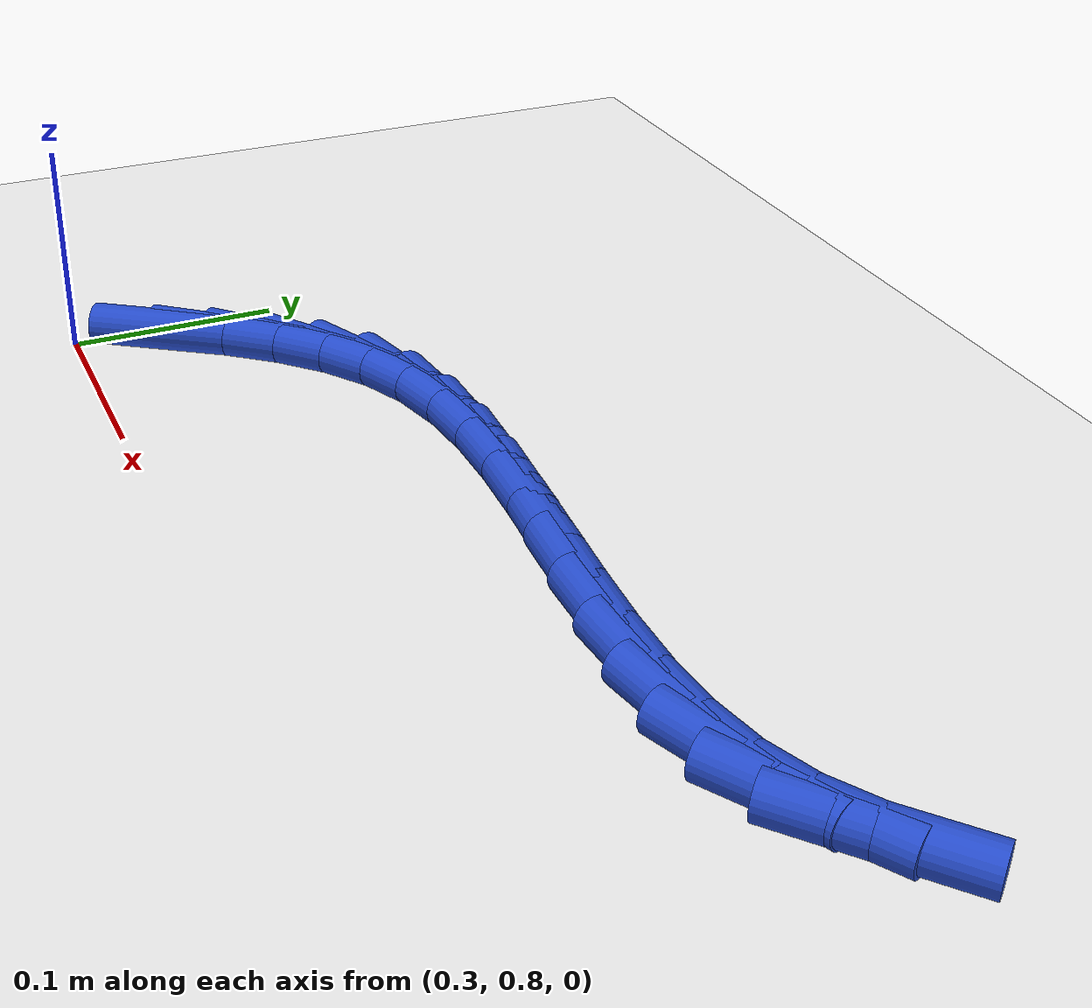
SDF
<sdf version="1.6">
 <world name="default">
  <model name="ground_plane">
   <static>1</static>
   <link name="link">
    <collision name="collision">
     <geometry><plane><normal>0 0 1</normal><size>100 100</size></plane></geometry>
     <surface><friction><ode><mu>100</mu><mu2>50</mu2></ode></friction></surface>
    </collision>
    <visual name="visual">
     <cast_shadows>0</cast_shadows>
     <geometry><plane><normal>0 0 1</normal><size>100 100</size></plane></geometry>
     <material>
      <script><uri>file://media/materials/scripts/gazebo.material</uri><name>Gazebo/WhiteGlow</name></script>
     </material>
    </visual>
   </link>
  </model>
  <model name="line">
   <link name="link_32">
    <pose>0.3221192694528783 0.8444501078541052 0.01 0 1.57 0.9850100628299966</pose>
    <collision name="collision">
     <geometry><cylinder><radius>0.01</radius><length>0.08</length></cylinder></geometry>
    </collision>
    <visual name="visual">
     <material>
      <script><name>Gazebo/Blue</name><uri>file://media/materials/scripts/gazebo.material</uri></script>
     </material>
     <geometry><cylinder><radius>0.01</radius><length>0.08</length></cylinder></geometry>
    </visual>
   </link>
   <link name="link_33">
    <pose>0.33787028518016565 0.8681904662751646 0.01 0 1.57 0.8951184825784314</pose>
    <collision name="collision">
     <geometry><cylinder><radius>0.01</radius><length>0.08</length></cylinder></geometry>
    </collision>
    <visual name="visual">
     <material>
      <script><name>Gazebo/Blue</name><uri>file://media/materials/scripts/gazebo.material</uri></script>
     </material>
     <geometry><cylinder><radius>0.01</radius><length>0.08</length></cylinder></geometry>
    </visual>
   </link>
   <link name="link_34">
    <pose>0.3549435868763936 0.889491151554974 0.01 0 1.57 0.7707838316606739</pose>
    <collision name="collision">
     <geometry><cylinder><radius>0.01</radius><length>0.08</length></cylinder></geometry>
    </collision>
    <visual name="visual">
     <material>
      <script><name>Gazebo/Blue</name><uri>file://media/materials/scripts/gazebo.material</uri></script>
     </material>
     <geometry><cylinder><radius>0.01</radius><length>0.08</length></cylinder></geometry>
    </visual>
   </link>
   <link name="link_35">
    <pose>0.3737444552649532 0.9077503729354849 0.01 0 1.57 0.6095183773093915</pose>
    <collision name="collision">
     <geometry><cylinder><radius>0.01</radius><length>0.08</length></cylinder></geometry>
    </collision>
    <visual name="visual">
     <material>
      <script><name>Gazebo/Blue</name><uri>file://media/materials/scripts/gazebo.material</uri></script>
     </material>
     <geometry><cylinder><radius>0.01</radius><length>0.08</length></cylinder></geometry>
    </visual>
   </link>
   <link name="link_36">
    <pose>0.3946781710692351 0.922366339658649 0.01 0 1.57 0.4169142393225173</pose>
    <collision name="collision">
     <geometry><cylinder><radius>0.01</radius><length>0.08</length></cylinder></geometry>
    </collision>
    <visual name="visual">
     <material>
      <script><name>Gazebo/Blue</name><uri>file://media/materials/scripts/gazebo.material</uri></script>
     </material>
     <geometry><cylinder><radius>0.01</radius><length>0.08</length></cylinder></geometry>
    </visual>
   </link>
   <link name="link_37">
    <pose>0.418137802423669 0.9327560586852598 0.01 0 1.57 0.2342398182294077</pose>
    <collision name="collision">
     <geometry><cylinder><radius>0.01</radius><length>0.08</length></cylinder></geometry>
    </collision>
    <visual name="visual">
     <material>
      <script><name>Gazebo/Blue</name><uri>file://media/materials/scripts/gazebo.material</uri></script>
     </material>
     <geometry><cylinder><radius>0.01</radius><length>0.08</length></cylinder></geometry>
    </visual>
   </link>
   <link name="link_38">
    <pose>0.4441148099556708 0.938954694602212 0.01 0 1.57 0.099165189854547</pose>
    <collision name="collision">
     <geometry><cylinder><radius>0.01</radius><length>0.08</length></cylinder></geometry>
    </collision>
    <visual name="visual">
     <material>
      <script><name>Gazebo/Blue</name><uri>file://media/materials/scripts/gazebo.material</uri></script>
     </material>
     <geometry><cylinder><radius>0.01</radius><length>0.08</length></cylinder></geometry>
    </visual>
   </link>
   <link name="link_39">
    <pose>0.4721177209583363 0.9417407470145399 0.01 0 1.57 0.0066443476232158055</pose>
    <collision name="collision">
     <geometry><cylinder><radius>0.01</radius><length>0.08</length></cylinder></geometry>
    </collision>
    <visual name="visual">
     <material>
      <script><name>Gazebo/Blue</name><uri>file://media/materials/scripts/gazebo.material</uri></script>
     </material>
     <geometry><cylinder><radius>0.01</radius><length>0.08</length></cylinder></geometry>
    </visual>
   </link>
   <link name="link_40">
    <pose>0.5016264113924837 0.9419368158970063 0.01 0 1.57 -0.051482534014663094</pose>
    <collision name="collision">
     <geometry><cylinder><radius>0.01</radius><length>0.08</length></cylinder></geometry>
    </collision>
    <visual name="visual">
     <material>
      <script><name>Gazebo/Blue</name><uri>file://media/materials/scripts/gazebo.material</uri></script>
     </material>
     <geometry><cylinder><radius>0.01</radius><length>0.08</length></cylinder></geometry>
    </visual>
   </link>
   <link name="link_41">
    <pose>0.5321207572189316 0.9403655012243733 0.01 0 1.57 -0.08109142949023493</pose>
    <collision name="collision">
     <geometry><cylinder><radius>0.01</radius><length>0.08</length></cylinder></geometry>
    </collision>
    <visual name="visual">
     <material>
      <script><name>Gazebo/Blue</name><uri>file://media/materials/scripts/gazebo.material</uri></script>
     </material>
     <geometry><cylinder><radius>0.01</radius><length>0.08</length></cylinder></geometry>
    </visual>
   </link>
   <link name="link_42">
    <pose>0.5630806343984984 0.9378494029714038 0.01 0 1.57 -0.08516022348309951</pose>
    <collision name="collision">
     <geometry><cylinder><radius>0.01</radius><length>0.08</length></cylinder></geometry>
    </collision>
    <visual name="visual">
     <material>
      <script><name>Gazebo/Blue</name><uri>file://media/materials/scripts/gazebo.material</uri></script>
     </material>
     <geometry><cylinder><radius>0.01</radius><length>0.08</length></cylinder></geometry>
    </visual>
   </link>
   <link name="link_43">
    <pose>0.5939859188920031 0.93521112111286 0.01 0 1.57 -0.06380477526195301</pose>
    <collision name="collision">
     <geometry><cylinder><radius>0.01</radius><length>0.08</length></cylinder></geometry>
    </collision>
    <visual name="visual">
     <material>
      <script><name>Gazebo/Blue</name><uri>file://media/materials/scripts/gazebo.material</uri></script>
     </material>
     <geometry><cylinder><radius>0.01</radius><length>0.08</length></cylinder></geometry>
    </visual>
   </link>
   <link name="link_44">
    <pose>0.6243164866602637 0.9332732556235039 0.01 0 1.57 -0.014188848642629209</pose>
    <collision name="collision">
     <geometry><cylinder><radius>0.01</radius><length>0.08</length></cylinder></geometry>
    </collision>
    <visual name="visual">
     <material>
      <script><name>Gazebo/Blue</name><uri>file://media/materials/scripts/gazebo.material</uri></script>
     </material>
     <geometry><cylinder><radius>0.01</radius><length>0.08</length></cylinder></geometry>
    </visual>
   </link>
   <link name="link_45">
    <pose>0.6535522136640988 0.9328584064780986 0.01 0 1.57 0.06978922296196566</pose>
    <collision name="collision">
     <geometry><cylinder><radius>0.01</radius><length>0.08</length></cylinder></geometry>
    </collision>
    <visual name="visual">
     <material>
      <script><name>Gazebo/Blue</name><uri>file://media/materials/scripts/gazebo.material</uri></script>
     </material>
     <geometry><cylinder><radius>0.01</radius><length>0.08</length></cylinder></geometry>
    </visual>
   </link>
   <link name="link_46">
    <pose>0.6811729758643272 0.9347891736514062 0.01 0 1.57 0.19746531131207593</pose>
    <collision name="collision">
     <geometry><cylinder><radius>0.01</radius><length>0.08</length></cylinder></geometry>
    </collision>
    <visual name="visual">
     <material>
      <script><name>Gazebo/Blue</name><uri>file://media/materials/scripts/gazebo.material</uri></script>
     </material>
     <geometry><cylinder><radius>0.01</radius><length>0.08</length></cylinder></geometry>
    </visual>
   </link>
   <link name="link_47">
    <pose>0.706658649221767 0.9398881571181894 0.01 0 1.57 0.37600592923872767</pose>
    <collision name="collision">
     <geometry><cylinder><radius>0.01</radius><length>0.08</length></cylinder></geometry>
    </collision>
    <visual name="visual">
     <material>
      <script><name>Gazebo/Blue</name><uri>file://media/materials/scripts/gazebo.material</uri></script>
     </material>
     <geometry><cylinder><radius>0.01</radius><length>0.08</length></cylinder></geometry>
    </visual>
   </link>
   <link name="link_48">
    <pose>0.7295363438716603 0.9489200153381636 0.01 0 1.57 0.5663426184428318</pose>
    <collision name="collision">
     <geometry><cylinder><radius>0.01</radius><length>0.08</length></cylinder></geometry>
    </collision>
    <visual name="visual">
     <material>
      <script><name>Gazebo/Blue</name><uri>file://media/materials/scripts/gazebo.material</uri></script>
     </material>
     <geometry><cylinder><radius>0.01</radius><length>0.08</length></cylinder></geometry>
    </visual>
   </link>
   <link name="link_49">
    <pose>0.7499464086456047 0.9618971552585215 0.01 0 1.57 0.7252811947216745</pose>
    <collision name="collision">
     <geometry><cylinder><radius>0.01</radius><length>0.08</length></cylinder></geometry>
    </collision>
    <visual name="visual">
     <material>
      <script><name>Gazebo/Blue</name><uri>file://media/materials/scripts/gazebo.material</uri></script>
     </material>
     <geometry><cylinder><radius>0.01</radius><length>0.08</length></cylinder></geometry>
    </visual>
   </link>
  </model>
 </world>
</sdf>
